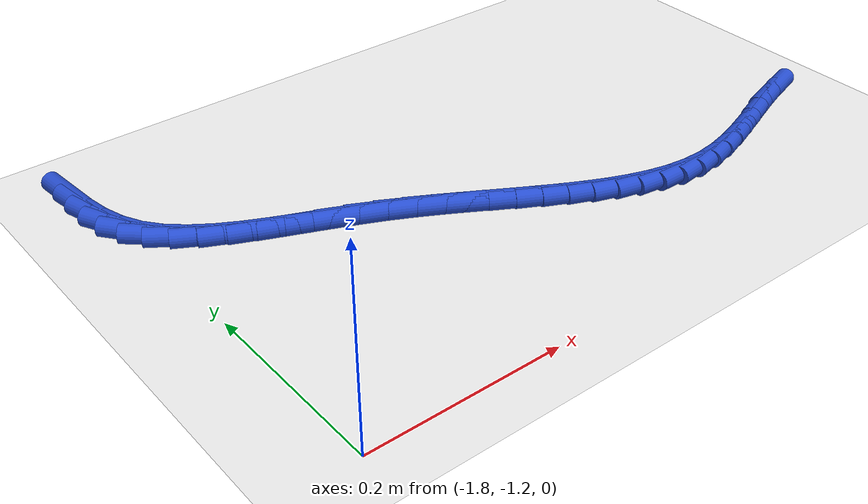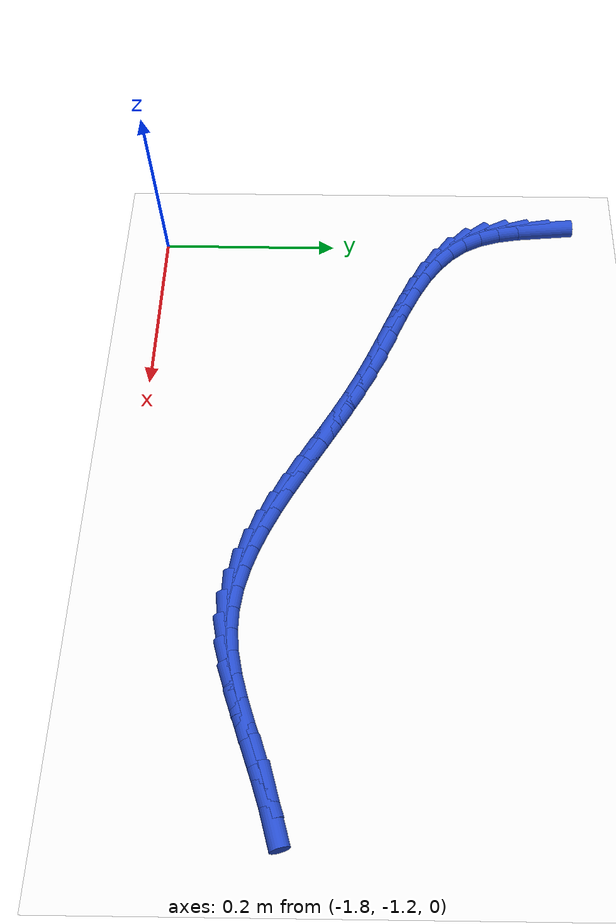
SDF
<sdf version="1.6">
 <world name="default">
  <model name="ground_plane">
   <static>1</static>
   <link name="link">
    <collision name="collision">
     <geometry><plane><normal>0 0 1</normal><size>100 100</size></plane></geometry>
     <surface><friction><ode><mu>100</mu><mu2>50</mu2></ode></friction></surface>
    </collision>
    <visual name="visual">
     <cast_shadows>0</cast_shadows>
     <geometry><plane><normal>0 0 1</normal><size>100 100</size></plane></geometry>
     <material>
      <script><uri>file://media/materials/scripts/gazebo.material</uri><name>Gazebo/WhiteGlow</name></script>
     </material>
    </visual>
   </link>
  </model>
  <model name="line">
   <link name="link_169">
    <pose>-1.822209390699093 -0.752836853987978 0.01 0 1.57 -1.476897879359211</pose>
    <collision name="collision">
     <geometry><cylinder><radius>0.01</radius><length>0.08</length></cylinder></geometry>
    </collision>
    <visual name="visual">
     <material>
      <script><name>Gazebo/Blue</name><uri>file://media/materials/scripts/gazebo.material</uri></script>
     </material>
     <geometry><cylinder><radius>0.01</radius><length>0.08</length></cylinder></geometry>
    </visual>
   </link>
   <link name="link_170">
    <pose>-1.8197812558535469 -0.778619968525155 0.01 0 1.57 -1.3973271892382189</pose>
    <collision name="collision">
     <geometry><cylinder><radius>0.01</radius><length>0.08</length></cylinder></geometry>
    </collision>
    <visual name="visual">
     <material>
      <script><name>Gazebo/Blue</name><uri>file://media/materials/scripts/gazebo.material</uri></script>
     </material>
     <geometry><cylinder><radius>0.01</radius><length>0.08</length></cylinder></geometry>
    </visual>
   </link>
   <link name="link_171">
    <pose>-1.8155049821222746 -0.803023699772442 0.01 0 1.57 -1.2726677748782396</pose>
    <collision name="collision">
     <geometry><cylinder><radius>0.01</radius><length>0.08</length></cylinder></geometry>
    </collision>
    <visual name="visual">
     <material>
      <script><name>Gazebo/Blue</name><uri>file://media/materials/scripts/gazebo.material</uri></script>
     </material>
     <geometry><cylinder><radius>0.01</radius><length>0.08</length></cylinder></geometry>
    </visual>
   </link>
   <link name="link_172">
    <pose>-1.808591342096211 -0.8255226733079561 0.01 0 1.57 -1.0960964538984346</pose>
    <collision name="collision">
     <geometry><cylinder><radius>0.01</radius><length>0.08</length></cylinder></geometry>
    </collision>
    <visual name="visual">
     <material>
      <script><name>Gazebo/Blue</name><uri>file://media/materials/scripts/gazebo.material</uri></script>
     </material>
     <geometry><cylinder><radius>0.01</radius><length>0.08</length></cylinder></geometry>
    </visual>
   </link>
   <link name="link_173">
    <pose>-1.798270765684266 -0.8456058094358729 0.01 0 1.57 -0.9006931033314513</pose>
    <collision name="collision">
     <geometry><cylinder><radius>0.01</radius><length>0.08</length></cylinder></geometry>
    </collision>
    <visual name="visual">
     <material>
      <script><name>Gazebo/Blue</name><uri>file://media/materials/scripts/gazebo.material</uri></script>
     </material>
     <geometry><cylinder><radius>0.01</radius><length>0.08</length></cylinder></geometry>
    </visual>
   </link>
   <link name="link_174">
    <pose>-1.7843460007058225 -0.8631782158446384 0.01 0 1.57 -0.7350152609512219</pose>
    <collision name="collision">
     <geometry><cylinder><radius>0.01</radius><length>0.08</length></cylinder></geometry>
    </collision>
    <visual name="visual">
     <material>
      <script><name>Gazebo/Blue</name><uri>file://media/materials/scripts/gazebo.material</uri></script>
     </material>
     <geometry><cylinder><radius>0.01</radius><length>0.08</length></cylinder></geometry>
    </visual>
   </link>
   <link name="link_175">
    <pose>-1.767268115635799 -0.8786164565109856 0.01 0 1.57 -0.6067905725641984</pose>
    <collision name="collision">
     <geometry><cylinder><radius>0.01</radius><length>0.08</length></cylinder></geometry>
    </collision>
    <visual name="visual">
     <material>
      <script><name>Gazebo/Blue</name><uri>file://media/materials/scripts/gazebo.material</uri></script>
     </material>
     <geometry><cylinder><radius>0.01</radius><length>0.08</length></cylinder></geometry>
    </visual>
   </link>
   <link name="link_176">
    <pose>-1.7475231109405176 -0.8923224978215056 0.01 0 1.57 -0.5138559637943736</pose>
    <collision name="collision">
     <geometry><cylinder><radius>0.01</radius><length>0.08</length></cylinder></geometry>
    </collision>
    <visual name="visual">
     <material>
      <script><name>Gazebo/Blue</name><uri>file://media/materials/scripts/gazebo.material</uri></script>
     </material>
     <geometry><cylinder><radius>0.01</radius><length>0.08</length></cylinder></geometry>
    </visual>
   </link>
   <link name="link_177">
    <pose>-1.7255969870863008 -0.9046983061627875 0.01 0 1.57 -0.45127545623421195</pose>
    <collision name="collision">
     <geometry><cylinder><radius>0.01</radius><length>0.08</length></cylinder></geometry>
    </collision>
    <visual name="visual">
     <material>
      <script><name>Gazebo/Blue</name><uri>file://media/materials/scripts/gazebo.material</uri></script>
     </material>
     <geometry><cylinder><radius>0.01</radius><length>0.08</length></cylinder></geometry>
    </visual>
   </link>
   <link name="link_178">
    <pose>-1.7019757445394685 -0.9161458479214215 0.01 0 1.57 -0.4143679483373138</pose>
    <collision name="collision">
     <geometry><cylinder><radius>0.01</radius><length>0.08</length></cylinder></geometry>
    </collision>
    <visual name="visual">
     <material>
      <script><name>Gazebo/Blue</name><uri>file://media/materials/scripts/gazebo.material</uri></script>
     </material>
     <geometry><cylinder><radius>0.01</radius><length>0.08</length></cylinder></geometry>
    </visual>
   </link>
   <link name="link_179">
    <pose>-1.6771453837663441 -0.9270670894839966 0.01 0 1.57 -0.39976991805609813</pose>
    <collision name="collision">
     <geometry><cylinder><radius>0.01</radius><length>0.08</length></cylinder></geometry>
    </collision>
    <visual name="visual">
     <material>
      <script><name>Gazebo/Blue</name><uri>file://media/materials/scripts/gazebo.material</uri></script>
     </material>
     <geometry><cylinder><radius>0.01</radius><length>0.08</length></cylinder></geometry>
    </visual>
   </link>
   <link name="link_180">
    <pose>-1.6515919052332488 -0.9378639972371038 0.01 0 1.57 -0.4055934907960378</pose>
    <collision name="collision">
     <geometry><cylinder><radius>0.01</radius><length>0.08</length></cylinder></geometry>
    </collision>
    <visual name="visual">
     <material>
      <script><name>Gazebo/Blue</name><uri>file://media/materials/scripts/gazebo.material</uri></script>
     </material>
     <geometry><cylinder><radius>0.01</radius><length>0.08</length></cylinder></geometry>
    </visual>
   </link>
   <link name="link_181">
    <pose>-1.6258013094065045 -0.9489385375673315 0.01 0 1.57 -0.4312807699136278</pose>
    <collision name="collision">
     <geometry><cylinder><radius>0.01</radius><length>0.08</length></cylinder></geometry>
    </collision>
    <visual name="visual">
     <material>
      <script><name>Gazebo/Blue</name><uri>file://media/materials/scripts/gazebo.material</uri></script>
     </material>
     <geometry><cylinder><radius>0.01</radius><length>0.08</length></cylinder></geometry>
    </visual>
   </link>
   <link name="link_182">
    <pose>-1.6002592754695752 -0.9606922688044359 0.01 0 1.57 -0.46943283846722494</pose>
    <collision name="collision">
     <geometry><cylinder><radius>0.01</radius><length>0.08</length></cylinder></geometry>
    </collision>
    <visual name="visual">
     <material>
      <script><name>Gazebo/Blue</name><uri>file://media/materials/scripts/gazebo.material</uri></script>
     </material>
     <geometry><cylinder><radius>0.01</radius><length>0.08</length></cylinder></geometry>
    </visual>
   </link>
   <link name="link_183">
    <pose>-1.5753104497512516 -0.9733476254350059 0.01 0 1.57 -0.5001728476166385</pose>
    <collision name="collision">
     <geometry><cylinder><radius>0.01</radius><length>0.08</length></cylinder></geometry>
    </collision>
    <visual name="visual">
     <material>
      <script><name>Gazebo/Blue</name><uri>file://media/materials/scripts/gazebo.material</uri></script>
     </material>
     <geometry><cylinder><radius>0.01</radius><length>0.08</length></cylinder></geometry>
    </visual>
   </link>
   <link name="link_184">
    <pose>-1.5509379410085682 -0.9866678581657016 0.01 0 1.57 -0.5202727420672216</pose>
    <collision name="collision">
     <geometry><cylinder><radius>0.01</radius><length>0.08</length></cylinder></geometry>
    </collision>
    <visual name="visual">
     <material>
      <script><name>Gazebo/Blue</name><uri>file://media/materials/scripts/gazebo.material</uri></script>
     </material>
     <geometry><cylinder><radius>0.01</radius><length>0.08</length></cylinder></geometry>
    </visual>
   </link>
   <link name="link_185">
    <pose>-1.5270677385092206 -1.0003436710439446 0.01 0 1.57 -0.529589763284685</pose>
    <collision name="collision">
     <geometry><cylinder><radius>0.01</radius><length>0.08</length></cylinder></geometry>
    </collision>
    <visual name="visual">
     <material>
      <script><name>Gazebo/Blue</name><uri>file://media/materials/scripts/gazebo.material</uri></script>
     </material>
     <geometry><cylinder><radius>0.01</radius><length>0.08</length></cylinder></geometry>
    </visual>
   </link>
   <link name="link_186">
    <pose>-1.503625831520908 -1.0140657681171557 0.01 0 1.57 -0.5277934317422925</pose>
    <collision name="collision">
     <geometry><cylinder><radius>0.01</radius><length>0.08</length></cylinder></geometry>
    </collision>
    <visual name="visual">
     <material>
      <script><name>Gazebo/Blue</name><uri>file://media/materials/scripts/gazebo.material</uri></script>
     </material>
     <geometry><cylinder><radius>0.01</radius><length>0.08</length></cylinder></geometry>
    </visual>
   </link>
   <link name="link_187">
    <pose>-1.4805382093113257 -1.0275248534327566 0.01 0 1.57 -0.514307343096665</pose>
    <collision name="collision">
     <geometry><cylinder><radius>0.01</radius><length>0.08</length></cylinder></geometry>
    </collision>
    <visual name="visual">
     <material>
      <script><name>Gazebo/Blue</name><uri>file://media/materials/scripts/gazebo.material</uri></script>
     </material>
     <geometry><cylinder><radius>0.01</radius><length>0.08</length></cylinder></geometry>
    </visual>
   </link>
   <link name="link_188">
    <pose>-1.457730861148173 -1.0404116310381681 0.01 0 1.57 -0.48827693070050704</pose>
    <collision name="collision">
     <geometry><cylinder><radius>0.01</radius><length>0.08</length></cylinder></geometry>
    </collision>
    <visual name="visual">
     <material>
      <script><name>Gazebo/Blue</name><uri>file://media/materials/scripts/gazebo.material</uri></script>
     </material>
     <geometry><cylinder><radius>0.01</radius><length>0.08</length></cylinder></geometry>
    </visual>
   </link>
   <link name="link_189">
    <pose>-1.4351297762991457 -1.052416804980812 0.01 0 1.57 -0.4485769224531824</pose>
    <collision name="collision">
     <geometry><cylinder><radius>0.01</radius><length>0.08</length></cylinder></geometry>
    </collision>
    <visual name="visual">
     <material>
      <script><name>Gazebo/Blue</name><uri>file://media/materials/scripts/gazebo.material</uri></script>
     </material>
     <geometry><cylinder><radius>0.01</radius><length>0.08</length></cylinder></geometry>
    </visual>
   </link>
   <link name="link_190">
    <pose>-1.4126609440319426 -1.0632310793081095 0.01 0 1.57 -0.3938909321600463</pose>
    <collision name="collision">
     <geometry><cylinder><radius>0.01</radius><length>0.08</length></cylinder></geometry>
    </collision>
    <visual name="visual">
     <material>
      <script><name>Gazebo/Blue</name><uri>file://media/materials/scripts/gazebo.material</uri></script>
     </material>
     <geometry><cylinder><radius>0.01</radius><length>0.08</length></cylinder></geometry>
    </visual>
   </link>
   <link name="link_191">
    <pose>-1.39025035361426 -1.0725451580674814 0.01 0 1.57 -0.32291929059297203</pose>
    <collision name="collision">
     <geometry><cylinder><radius>0.01</radius><length>0.08</length></cylinder></geometry>
    </collision>
    <visual name="visual">
     <material>
      <script><name>Gazebo/Blue</name><uri>file://media/materials/scripts/gazebo.material</uri></script>
     </material>
     <geometry><cylinder><radius>0.01</radius><length>0.08</length></cylinder></geometry>
    </visual>
   </link>
   <link name="link_192">
    <pose>-1.3678239943137962 -1.0800497453063491 0.01 0 1.57 -0.23478586547941213</pose>
    <collision name="collision">
     <geometry><cylinder><radius>0.01</radius><length>0.08</length></cylinder></geometry>
    </collision>
    <visual name="visual">
     <material>
      <script><name>Gazebo/Blue</name><uri>file://media/materials/scripts/gazebo.material</uri></script>
     </material>
     <geometry><cylinder><radius>0.01</radius><length>0.08</length></cylinder></geometry>
    </visual>
   </link>
   <link name="link_193">
    <pose>-1.3453078553982483 -1.085435545072134 0.01 0 1.57 -0.12967932943008365</pose>
    <collision name="collision">
     <geometry><cylinder><radius>0.01</radius><length>0.08</length></cylinder></geometry>
    </collision>
    <visual name="visual">
     <material>
      <script><name>Gazebo/Blue</name><uri>file://media/materials/scripts/gazebo.material</uri></script>
     </material>
     <geometry><cylinder><radius>0.01</radius><length>0.08</length></cylinder></geometry>
    </visual>
   </link>
   <link name="link_194">
    <pose>-1.3226279261353127 -1.088393261412258 0.01 0 1.57 -0.009613961334483626</pose>
    <collision name="collision">
     <geometry><cylinder><radius>0.01</radius><length>0.08</length></cylinder></geometry>
    </collision>
    <visual name="visual">
     <material>
      <script><name>Gazebo/Blue</name><uri>file://media/materials/scripts/gazebo.material</uri></script>
     </material>
     <geometry><cylinder><radius>0.01</radius><length>0.08</length></cylinder></geometry>
    </visual>
   </link>
   <link name="link_195">
    <pose>-1.2997101957926884 -1.0886135983741414 0.01 0 1.57 0.11638126386087298</pose>
    <collision name="collision">
     <geometry><cylinder><radius>0.01</radius><length>0.08</length></cylinder></geometry>
    </collision>
    <visual name="visual">
     <material>
      <script><name>Gazebo/Blue</name><uri>file://media/materials/scripts/gazebo.material</uri></script>
     </material>
     <geometry><cylinder><radius>0.01</radius><length>0.08</length></cylinder></geometry>
    </visual>
   </link>
   <link name="link_196">
    <pose>-1.2764933580577849 -1.0858993278074405 0.01 0 1.57 0.21920877810879746</pose>
    <collision name="collision">
     <geometry><cylinder><radius>0.01</radius><length>0.08</length></cylinder></geometry>
    </collision>
    <visual name="visual">
     <material>
      <script><name>Gazebo/Blue</name><uri>file://media/materials/scripts/gazebo.material</uri></script>
     </material>
     <geometry><cylinder><radius>0.01</radius><length>0.08</length></cylinder></geometry>
    </visual>
   </link>
   <link name="link_197">
    <pose>-1.252985114884125 -1.0806619549706205 0.01 0 1.57 0.29194608016191065</pose>
    <collision name="collision">
     <geometry><cylinder><radius>0.01</radius><length>0.08</length></cylinder></geometry>
    </collision>
    <visual name="visual">
     <material>
      <script><name>Gazebo/Blue</name><uri>file://media/materials/scripts/gazebo.material</uri></script>
     </material>
     <geometry><cylinder><radius>0.01</radius><length>0.08</length></cylinder></geometry>
    </visual>
   </link>
   <link name="link_198">
    <pose>-1.2292164875290017 -1.0735186885845835 0.01 0 1.57 0.3378807965869093</pose>
    <collision name="collision">
     <geometry><cylinder><radius>0.01</radius><length>0.08</length></cylinder></geometry>
    </collision>
    <visual name="visual">
     <material>
      <script><name>Gazebo/Blue</name><uri>file://media/materials/scripts/gazebo.material</uri></script>
     </material>
     <geometry><cylinder><radius>0.01</radius><length>0.08</length></cylinder></geometry>
    </visual>
   </link>
   <link name="link_199">
    <pose>-1.2052185155001305 -1.0650868983602368 0.01 0 1.57 0.35983334751535023</pose>
    <collision name="collision">
     <geometry><cylinder><radius>0.01</radius><length>0.08</length></cylinder></geometry>
    </collision>
    <visual name="visual">
     <material>
      <script><name>Gazebo/Blue</name><uri>file://media/materials/scripts/gazebo.material</uri></script>
     </material>
     <geometry><cylinder><radius>0.01</radius><length>0.08</length></cylinder></geometry>
    </visual>
   </link>
   <link name="link_200">
    <pose>-1.1810222383052242 -1.0559839540084854 0.01 0 1.57 0.35950456107223056</pose>
    <collision name="collision">
     <geometry><cylinder><radius>0.01</radius><length>0.08</length></cylinder></geometry>
    </collision>
    <visual name="visual">
     <material>
      <script><name>Gazebo/Blue</name><uri>file://media/materials/scripts/gazebo.material</uri></script>
     </material>
     <geometry><cylinder><radius>0.01</radius><length>0.08</length></cylinder></geometry>
    </visual>
   </link>
   <link name="link_201">
    <pose>-1.1566586954519997 -1.0468272252402369 0.01 0 1.57 0.33733734438823076</pose>
    <collision name="collision">
     <geometry><cylinder><radius>0.01</radius><length>0.08</length></cylinder></geometry>
    </collision>
    <visual name="visual">
     <material>
      <script><name>Gazebo/Blue</name><uri>file://media/materials/scripts/gazebo.material</uri></script>
     </material>
     <geometry><cylinder><radius>0.01</radius><length>0.08</length></cylinder></geometry>
    </visual>
   </link>
   <link name="link_202">
    <pose>-1.1321589264481695 -1.0382340817663962 0.01 0 1.57 0.2926011608317197</pose>
    <collision name="collision">
     <geometry><cylinder><radius>0.01</radius><length>0.08</length></cylinder></geometry>
    </collision>
    <visual name="visual">
     <material>
      <script><name>Gazebo/Blue</name><uri>file://media/materials/scripts/gazebo.material</uri></script>
     </material>
     <geometry><cylinder><radius>0.01</radius><length>0.08</length></cylinder></geometry>
    </visual>
   </link>
  </model>
 </world>
</sdf>
